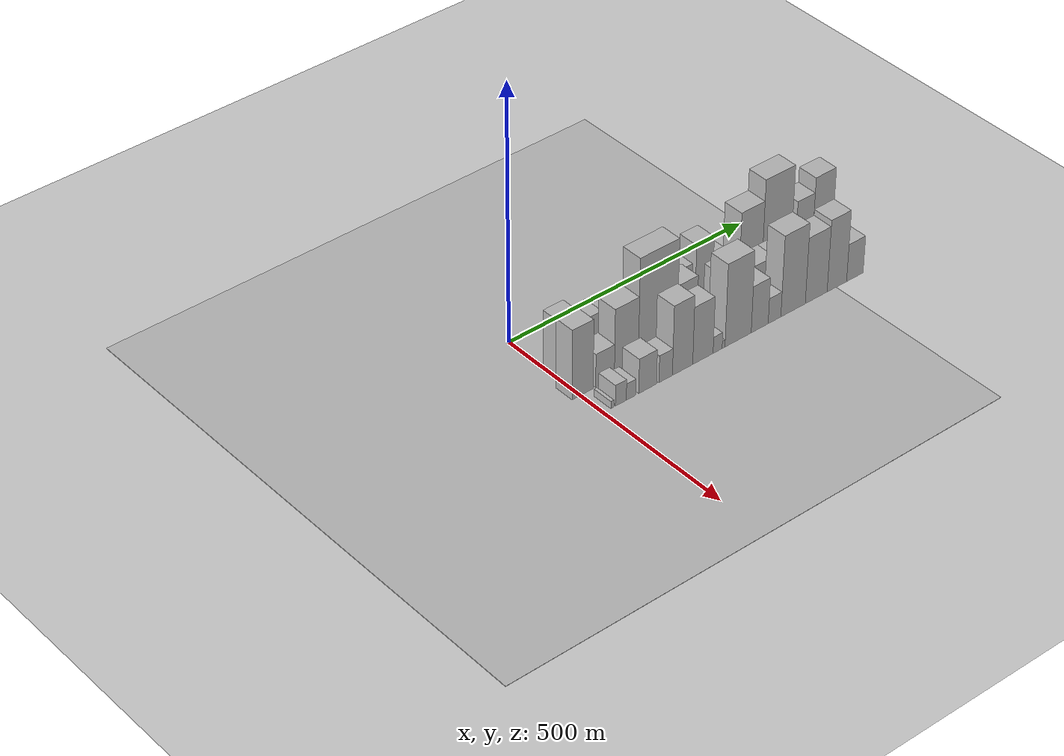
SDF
<sdf version="1.6">
 <world name="default">
  <include><name>ground_plane_1</name><uri>model://HANNAS_ground_plane</uri></include>
  <include>
   <name>ground_plane_2</name>
   <uri>model://HANNAS_ground_plane</uri>
   <pose>100 0 0  0 0 0</pose>
  </include>
  <model name="building_18">
   <static>1</static>
   <pose>100.0000 24.0642 0 0.000000 0.000000 0.000000</pose>
   <link name="link">
    <pose>0 0 55.50 0 0 0</pose>
    <collision name="collision"><geometry><box><size>40.0000 41.2345 111.0000</size></box></geometry></collision>
    <visual name="visual">
     <cast_shadows>0</cast_shadows>
     <geometry><box><size>40.0000 41.2345 111.0000</size></box></geometry>
     <material>
      <script>
       <uri>model://HANNAS_wall/materials/scripts</uri>
       <uri>model://HANNAS_wall/materials/textures</uri>
       <name>vrc/HANNAS_wall</name>
      </script>
     </material>
    </visual>
   </link>
  </model>
  <model name="building_19">
   <static>1</static>
   <pose>100.0000 67.6600 0 0.000000 0.000000 0.000000</pose>
   <link name="link">
    <pose>0 0 45.00 0 0 0</pose>
    <collision name="collision"><geometry><box><size>40.0000 45.9570 90.0000</size></box></geometry></collision>
    <visual name="visual">
     <cast_shadows>0</cast_shadows>
     <geometry><box><size>40.0000 45.9570 90.0000</size></box></geometry>
     <material>
      <script>
       <uri>model://HANNAS_wall/materials/scripts</uri>
       <uri>model://HANNAS_wall/materials/textures</uri>
       <name>vrc/HANNAS_wall</name>
      </script>
     </material>
    </visual>
   </link>
  </model>
  <model name="building_20">
   <static>1</static>
   <pose>100.0000 117.6161 0 0.000000 0.000000 0.000000</pose>
   <link name="link">
    <pose>0 0 37.50 0 0 0</pose>
    <collision name="collision"><geometry><box><size>40.0000 41.9552 75.0000</size></box></geometry></collision>
    <visual name="visual">
     <cast_shadows>0</cast_shadows>
     <geometry><box><size>40.0000 41.9552 75.0000</size></box></geometry>
     <material>
      <script>
       <uri>model://HANNAS_wall/materials/scripts</uri>
       <uri>model://HANNAS_wall/materials/textures</uri>
       <name>vrc/HANNAS_wall</name>
      </script>
     </material>
    </visual>
   </link>
  </model>
  <model name="building_21">
   <static>1</static>
   <pose>100.0000 154.2521 0 0.000000 0.000000 0.000000</pose>
   <link name="link">
    <pose>0 0 28.50 0 0 0</pose>
    <collision name="collision"><geometry><box><size>40.0000 31.3169 57.0000</size></box></geometry></collision>
    <visual name="visual">
     <cast_shadows>0</cast_shadows>
     <geometry><box><size>40.0000 31.3169 57.0000</size></box></geometry>
     <material>
      <script>
       <uri>model://HANNAS_wall/materials/scripts</uri>
       <uri>model://HANNAS_wall/materials/textures</uri>
       <name>vrc/HANNAS_wall</name>
      </script>
     </material>
    </visual>
   </link>
  </model>
  <model name="building_22">
   <static>1</static>
   <pose>100.0000 187.3715 0 0.000000 0.000000 0.000000</pose>
   <link name="link">
    <pose>0 0 21.00 0 0 0</pose>
    <collision name="collision"><geometry><box><size>40.0000 22.9218 42.0000</size></box></geometry></collision>
    <visual name="visual">
     <cast_shadows>0</cast_shadows>
     <geometry><box><size>40.0000 22.9218 42.0000</size></box></geometry>
     <material>
      <script>
       <uri>model://HANNAS_wall/materials/scripts</uri>
       <uri>model://HANNAS_wall/materials/textures</uri>
       <name>vrc/HANNAS_wall</name>
      </script>
     </material>
    </visual>
   </link>
  </model>
  <model name="building_23">
   <static>1</static>
   <pose>100.0000 208.8931 0 0.000000 0.000000 0.000000</pose>
   <link name="link">
    <pose>0 0 19.50 0 0 0</pose>
    <collision name="collision"><geometry><box><size>40.0000 20.1214 39.0000</size></box></geometry></collision>
    <visual name="visual">
     <cast_shadows>0</cast_shadows>
     <geometry><box><size>40.0000 20.1214 39.0000</size></box></geometry>
     <material>
      <script>
       <uri>model://HANNAS_wall/materials/scripts</uri>
       <uri>model://HANNAS_wall/materials/textures</uri>
       <name>vrc/HANNAS_wall</name>
      </script>
     </material>
    </visual>
   </link>
  </model>
  <model name="building_24">
   <static>1</static>
   <pose>100.0000 226.6315 0 0.000000 0.000000 0.000000</pose>
   <link name="link">
    <pose>0 0 7.50 0 0 0</pose>
    <collision name="collision"><geometry><box><size>40.0000 7.3554 15.0000</size></box></geometry></collision>
    <visual name="visual">
     <cast_shadows>0</cast_shadows>
     <geometry><box><size>40.0000 7.3554 15.0000</size></box></geometry>
     <material>
      <script>
       <uri>model://HANNAS_wall/materials/scripts</uri>
       <uri>model://HANNAS_wall/materials/textures</uri>
       <name>vrc/HANNAS_wall</name>
      </script>
     </material>
    </visual>
   </link>
  </model>
  <model name="building_25">
   <static>1</static>
   <pose>100.0000 256.3185 0 0.000000 0.000000 0.000000</pose>
   <link name="link">
    <pose>0 0 45.00 0 0 0</pose>
    <collision name="collision"><geometry><box><size>40.0000 52.0186 90.0000</size></box></geometry></collision>
    <visual name="visual">
     <cast_shadows>0</cast_shadows>
     <geometry><box><size>40.0000 52.0186 90.0000</size></box></geometry>
     <material>
      <script>
       <uri>model://HANNAS_wall/materials/scripts</uri>
       <uri>model://HANNAS_wall/materials/textures</uri>
       <name>vrc/HANNAS_wall</name>
      </script>
     </material>
    </visual>
   </link>
  </model>
  <model name="building_26">
   <static>1</static>
   <pose>100.0000 308.2832 0 0.000000 0.000000 0.000000</pose>
   <link name="link">
    <pose>0 0 61.50 0 0 0</pose>
    <collision name="collision"><geometry><box><size>40.0000 37.9109 123.0000</size></box></geometry></collision>
    <visual name="visual">
     <cast_shadows>0</cast_shadows>
     <geometry><box><size>40.0000 37.9109 123.0000</size></box></geometry>
     <material>
      <script>
       <uri>model://HANNAS_wall/materials/scripts</uri>
       <uri>model://HANNAS_wall/materials/textures</uri>
       <name>vrc/HANNAS_wall</name>
      </script>
     </material>
    </visual>
   </link>
  </model>
  <model name="building_27">
   <static>1</static>
   <pose>100.0000 347.2899 0 0.000000 0.000000 0.000000</pose>
   <link name="link">
    <pose>0 0 36.00 0 0 0</pose>
    <collision name="collision"><geometry><box><size>40.0000 40.1024 72.0000</size></box></geometry></collision>
    <visual name="visual">
     <cast_shadows>0</cast_shadows>
     <geometry><box><size>40.0000 40.1024 72.0000</size></box></geometry>
     <material>
      <script>
       <uri>model://HANNAS_wall/materials/scripts</uri>
       <uri>model://HANNAS_wall/materials/textures</uri>
       <name>vrc/HANNAS_wall</name>
      </script>
     </material>
    </visual>
   </link>
  </model>
  <model name="building_28">
   <static>1</static>
   <pose>100.0000 376.7206 0 0.000000 0.000000 0.000000</pose>
   <link name="link">
    <pose>0 0 18.00 0 0 0</pose>
    <collision name="collision"><geometry><box><size>40.0000 18.7589 36.0000</size></box></geometry></collision>
    <visual name="visual">
     <cast_shadows>0</cast_shadows>
     <geometry><box><size>40.0000 18.7589 36.0000</size></box></geometry>
     <material>
      <script>
       <uri>model://HANNAS_wall/materials/scripts</uri>
       <uri>model://HANNAS_wall/materials/textures</uri>
       <name>vrc/HANNAS_wall</name>
      </script>
     </material>
    </visual>
   </link>
  </model>
  <model name="building_29">
   <static>1</static>
   <pose>100.0000 411.4911 0 0.000000 0.000000 0.000000</pose>
   <link name="link">
    <pose>0 0 70.50 0 0 0</pose>
    <collision name="collision"><geometry><box><size>40.0000 50.7822 141.0000</size></box></geometry></collision>
    <visual name="visual">
     <cast_shadows>0</cast_shadows>
     <geometry><box><size>40.0000 50.7822 141.0000</size></box></geometry>
     <material>
      <script>
       <uri>model://HANNAS_wall/materials/scripts</uri>
       <uri>model://HANNAS_wall/materials/textures</uri>
       <name>vrc/HANNAS_wall</name>
      </script>
     </material>
    </visual>
   </link>
  </model>
  <model name="building_30">
   <static>1</static>
   <pose>100.0000 469.4045 0 0.000000 0.000000 0.000000</pose>
   <link name="link">
    <pose>0 0 91.50 0 0 0</pose>
    <collision name="collision"><geometry><box><size>40.0000 65.0444 183.0000</size></box></geometry></collision>
    <visual name="visual">
     <cast_shadows>0</cast_shadows>
     <geometry><box><size>40.0000 65.0444 183.0000</size></box></geometry>
     <material>
      <script>
       <uri>model://HANNAS_wall/materials/scripts</uri>
       <uri>model://HANNAS_wall/materials/textures</uri>
       <name>vrc/HANNAS_wall</name>
      </script>
     </material>
    </visual>
   </link>
  </model>
  <model name="building_31">
   <static>1</static>
   <pose>100.0000 507.0279 0 0.000000 0.000000 0.000000</pose>
   <link name="link">
    <pose>0 0 12.00 0 0 0</pose>
    <collision name="collision"><geometry><box><size>40.0000 10.2025 24.0000</size></box></geometry></collision>
    <visual name="visual">
     <cast_shadows>0</cast_shadows>
     <geometry><box><size>40.0000 10.2025 24.0000</size></box></geometry>
     <material>
      <script>
       <uri>model://HANNAS_wall/materials/scripts</uri>
       <uri>model://HANNAS_wall/materials/textures</uri>
       <name>vrc/HANNAS_wall</name>
      </script>
     </material>
    </visual>
   </link>
  </model>
  <model name="building_32">
   <static>1</static>
   <pose>100.0000 531.5243 0 0.000000 0.000000 0.000000</pose>
   <link name="link">
    <pose>0 0 52.50 0 0 0</pose>
    <collision name="collision"><geometry><box><size>40.0000 38.7903 105.0000</size></box></geometry></collision>
    <visual name="visual">
     <cast_shadows>0</cast_shadows>
     <geometry><box><size>40.0000 38.7903 105.0000</size></box></geometry>
     <material>
      <script>
       <uri>model://HANNAS_wall/materials/scripts</uri>
       <uri>model://HANNAS_wall/materials/textures</uri>
       <name>vrc/HANNAS_wall</name>
      </script>
     </material>
    </visual>
   </link>
  </model>
  <model name="building_33">
   <static>1</static>
   <pose>100.0000 573.8433 0 0.000000 0.000000 0.000000</pose>
   <link name="link">
    <pose>0 0 67.50 0 0 0</pose>
    <collision name="collision"><geometry><box><size>40.0000 45.8476 135.0000</size></box></geometry></collision>
    <visual name="visual">
     <cast_shadows>0</cast_shadows>
     <geometry><box><size>40.0000 45.8476 135.0000</size></box></geometry>
     <material>
      <script>
       <uri>model://HANNAS_wall/materials/scripts</uri>
       <uri>model://HANNAS_wall/materials/textures</uri>
       <name>vrc/HANNAS_wall</name>
      </script>
     </material>
    </visual>
   </link>
  </model>
  <model name="building_49">
   <static>1</static>
   <pose>155.0000 4.6128 0 0.000000 0.000000 0.000000</pose>
   <link name="link">
    <pose>0 0 69.00 0 0 0</pose>
    <collision name="collision"><geometry><box><size>40.0000 43.2898 138.0000</size></box></geometry></collision>
    <visual name="visual">
     <cast_shadows>0</cast_shadows>
     <geometry><box><size>40.0000 43.2898 138.0000</size></box></geometry>
     <material>
      <script>
       <uri>model://HANNAS_wall/materials/scripts</uri>
       <uri>model://HANNAS_wall/materials/textures</uri>
       <name>vrc/HANNAS_wall</name>
      </script>
     </material>
    </visual>
   </link>
  </model>
  <model name="building_50">
   <static>1</static>
   <pose>155.0000 50.6051 0 0.000000 0.000000 0.000000</pose>
   <link name="link">
    <pose>0 0 33.00 0 0 0</pose>
    <collision name="collision"><geometry><box><size>40.0000 38.6946 66.0000</size></box></geometry></collision>
    <visual name="visual">
     <cast_shadows>0</cast_shadows>
     <geometry><box><size>40.0000 38.6946 66.0000</size></box></geometry>
     <material>
      <script>
       <uri>model://HANNAS_wall/materials/scripts</uri>
       <uri>model://HANNAS_wall/materials/textures</uri>
       <name>vrc/HANNAS_wall</name>
      </script>
     </material>
    </visual>
   </link>
  </model>
  <model name="building_51">
   <static>1</static>
   <pose>155.0000 94.8474 0 0.000000 0.000000 0.000000</pose>
   <link name="link">
    <pose>0 0 67.50 0 0 0</pose>
    <collision name="collision"><geometry><box><size>40.0000 49.7900 135.0000</size></box></geometry></collision>
    <visual name="visual">
     <cast_shadows>0</cast_shadows>
     <geometry><box><size>40.0000 49.7900 135.0000</size></box></geometry>
     <material>
      <script>
       <uri>model://HANNAS_wall/materials/scripts</uri>
       <uri>model://HANNAS_wall/materials/textures</uri>
       <name>vrc/HANNAS_wall</name>
      </script>
     </material>
    </visual>
   </link>
  </model>
  <model name="building_52">
   <static>1</static>
   <pose>155.0000 160.4643 0 0.000000 0.000000 0.000000</pose>
   <link name="link">
    <pose>0 0 105.00 0 0 0</pose>
    <collision name="collision"><geometry><box><size>40.0000 81.4439 210.0000</size></box></geometry></collision>
    <visual name="visual">
     <cast_shadows>0</cast_shadows>
     <geometry><box><size>40.0000 81.4439 210.0000</size></box></geometry>
     <material>
      <script>
       <uri>model://HANNAS_wall/materials/scripts</uri>
       <uri>model://HANNAS_wall/materials/textures</uri>
       <name>vrc/HANNAS_wall</name>
      </script>
     </material>
    </visual>
   </link>
  </model>
  <model name="building_53">
   <static>1</static>
   <pose>155.0000 222.3354 0 0.000000 0.000000 0.000000</pose>
   <link name="link">
    <pose>0 0 58.50 0 0 0</pose>
    <collision name="collision"><geometry><box><size>40.0000 42.2984 117.0000</size></box></geometry></collision>
    <visual name="visual">
     <cast_shadows>0</cast_shadows>
     <geometry><box><size>40.0000 42.2984 117.0000</size></box></geometry>
     <material>
      <script>
       <uri>model://HANNAS_wall/materials/scripts</uri>
       <uri>model://HANNAS_wall/materials/textures</uri>
       <name>vrc/HANNAS_wall</name>
      </script>
     </material>
    </visual>
   </link>
  </model>
  <model name="building_54">
   <static>1</static>
   <pose>155.0000 248.9616 0 0.000000 0.000000 0.000000</pose>
   <link name="link">
    <pose>0 0 13.50 0 0 0</pose>
    <collision name="collision"><geometry><box><size>40.0000 10.9540 27.0000</size></box></geometry></collision>
    <visual name="visual">
     <cast_shadows>0</cast_shadows>
     <geometry><box><size>40.0000 10.9540 27.0000</size></box></geometry>
     <material>
      <script>
       <uri>model://HANNAS_wall/materials/scripts</uri>
       <uri>model://HANNAS_wall/materials/textures</uri>
       <name>vrc/HANNAS_wall</name>
      </script>
     </material>
    </visual>
   </link>
  </model>
  <model name="building_55">
   <static>1</static>
   <pose>155.0000 263.4858 0 0.000000 0.000000 0.000000</pose>
   <link name="link">
    <pose>0 0 16.50 0 0 0</pose>
    <collision name="collision"><geometry><box><size>40.0000 18.0944 33.0000</size></box></geometry></collision>
    <visual name="visual">
     <cast_shadows>0</cast_shadows>
     <geometry><box><size>40.0000 18.0944 33.0000</size></box></geometry>
     <material>
      <script>
       <uri>model://HANNAS_wall/materials/scripts</uri>
       <uri>model://HANNAS_wall/materials/textures</uri>
       <name>vrc/HANNAS_wall</name>
      </script>
     </material>
    </visual>
   </link>
  </model>
  <model name="building_56">
   <static>1</static>
   <pose>155.0000 283.2851 0 0.000000 0.000000 0.000000</pose>
   <link name="link">
    <pose>0 0 18.00 0 0 0</pose>
    <collision name="collision"><geometry><box><size>40.0000 21.5044 36.0000</size></box></geometry></collision>
    <visual name="visual">
     <cast_shadows>0</cast_shadows>
     <geometry><box><size>40.0000 21.5044 36.0000</size></box></geometry>
     <material>
      <script>
       <uri>model://HANNAS_wall/materials/scripts</uri>
       <uri>model://HANNAS_wall/materials/textures</uri>
       <name>vrc/HANNAS_wall</name>
      </script>
     </material>
    </visual>
   </link>
  </model>
  <model name="building_57">
   <static>1</static>
   <pose>155.0000 311.6942 0 0.000000 0.000000 0.000000</pose>
   <link name="link">
    <pose>0 0 46.50 0 0 0</pose>
    <collision name="collision"><geometry><box><size>40.0000 35.3137 93.0000</size></box></geometry></collision>
    <visual name="visual">
     <cast_shadows>0</cast_shadows>
     <geometry><box><size>40.0000 35.3137 93.0000</size></box></geometry>
     <material>
      <script>
       <uri>model://HANNAS_wall/materials/scripts</uri>
       <uri>model://HANNAS_wall/materials/textures</uri>
       <name>vrc/HANNAS_wall</name>
      </script>
     </material>
    </visual>
   </link>
  </model>
  <model name="building_58">
   <static>1</static>
   <pose>155.0000 343.0744 0 0.000000 0.000000 0.000000</pose>
   <link name="link">
    <pose>0 0 10.50 0 0 0</pose>
    <collision name="collision"><geometry><box><size>40.0000 9.4468 21.0000</size></box></geometry></collision>
    <visual name="visual">
     <cast_shadows>0</cast_shadows>
     <geometry><box><size>40.0000 9.4468 21.0000</size></box></geometry>
     <material>
      <script>
       <uri>model://HANNAS_wall/materials/scripts</uri>
       <uri>model://HANNAS_wall/materials/textures</uri>
       <name>vrc/HANNAS_wall</name>
      </script>
     </material>
    </visual>
   </link>
  </model>
  <model name="building_59">
   <static>1</static>
   <pose>155.0000 356.5748 0 0.000000 0.000000 0.000000</pose>
   <link name="link">
    <pose>0 0 15.00 0 0 0</pose>
    <collision name="collision"><geometry><box><size>40.0000 17.5541 30.0000</size></box></geometry></collision>
    <visual name="visual">
     <cast_shadows>0</cast_shadows>
     <geometry><box><size>40.0000 17.5541 30.0000</size></box></geometry>
     <material>
      <script>
       <uri>model://HANNAS_wall/materials/scripts</uri>
       <uri>model://HANNAS_wall/materials/textures</uri>
       <name>vrc/HANNAS_wall</name>
      </script>
     </material>
    </visual>
   </link>
  </model>
  <model name="building_60">
   <static>1</static>
   <pose>155.0000 387.7113 0 0.000000 0.000000 0.000000</pose>
   <link name="link">
    <pose>0 0 37.50 0 0 0</pose>
    <collision name="collision"><geometry><box><size>40.0000 44.7188 75.0000</size></box></geometry></collision>
    <visual name="visual">
     <cast_shadows>0</cast_shadows>
     <geometry><box><size>40.0000 44.7188 75.0000</size></box></geometry>
     <material>
      <script>
       <uri>model://HANNAS_wall/materials/scripts</uri>
       <uri>model://HANNAS_wall/materials/textures</uri>
       <name>vrc/HANNAS_wall</name>
      </script>
     </material>
    </visual>
   </link>
  </model>
  <model name="building_61">
   <static>1</static>
   <pose>155.0000 432.0967 0 0.000000 0.000000 0.000000</pose>
   <link name="link">
    <pose>0 0 37.50 0 0 0</pose>
    <collision name="collision"><geometry><box><size>40.0000 44.0520 75.0000</size></box></geometry></collision>
    <visual name="visual">
     <cast_shadows>0</cast_shadows>
     <geometry><box><size>40.0000 44.0520 75.0000</size></box></geometry>
     <material>
      <script>
       <uri>model://HANNAS_wall/materials/scripts</uri>
       <uri>model://HANNAS_wall/materials/textures</uri>
       <name>vrc/HANNAS_wall</name>
      </script>
     </material>
    </visual>
   </link>
  </model>
  <model name="building_62">
   <static>1</static>
   <pose>155.0000 467.9388 0 0.000000 0.000000 0.000000</pose>
   <link name="link">
    <pose>0 0 18.00 0 0 0</pose>
    <collision name="collision"><geometry><box><size>40.0000 19.6323 36.0000</size></box></geometry></collision>
    <visual name="visual">
     <cast_shadows>0</cast_shadows>
     <geometry><box><size>40.0000 19.6323 36.0000</size></box></geometry>
     <material>
      <script>
       <uri>model://HANNAS_wall/materials/scripts</uri>
       <uri>model://HANNAS_wall/materials/textures</uri>
       <name>vrc/HANNAS_wall</name>
      </script>
     </material>
    </visual>
   </link>
  </model>
  <model name="building_63">
   <static>1</static>
   <pose>155.0000 484.3345 0 0.000000 0.000000 0.000000</pose>
   <link name="link">
    <pose>0 0 13.50 0 0 0</pose>
    <collision name="collision"><geometry><box><size>40.0000 13.1590 27.0000</size></box></geometry></collision>
    <visual name="visual">
     <cast_shadows>0</cast_shadows>
     <geometry><box><size>40.0000 13.1590 27.0000</size></box></geometry>
     <material>
      <script>
       <uri>model://HANNAS_wall/materials/scripts</uri>
       <uri>model://HANNAS_wall/materials/textures</uri>
       <name>vrc/HANNAS_wall</name>
      </script>
     </material>
    </visual>
   </link>
  </model>
  <model name="building_64">
   <static>1</static>
   <pose>155.0000 506.5826 0 0.000000 0.000000 0.000000</pose>
   <link name="link">
    <pose>0 0 18.00 0 0 0</pose>
    <collision name="collision"><geometry><box><size>40.0000 21.3373 36.0000</size></box></geometry></collision>
    <visual name="visual">
     <cast_shadows>0</cast_shadows>
     <geometry><box><size>40.0000 21.3373 36.0000</size></box></geometry>
     <material>
      <script>
       <uri>model://HANNAS_wall/materials/scripts</uri>
       <uri>model://HANNAS_wall/materials/textures</uri>
       <name>vrc/HANNAS_wall</name>
      </script>
     </material>
    </visual>
   </link>
  </model>
  <model name="building_65">
   <static>1</static>
   <pose>155.0000 532.1347 0 0.000000 0.000000 0.000000</pose>
   <link name="link">
    <pose>0 0 28.50 0 0 0</pose>
    <collision name="collision"><geometry><box><size>40.0000 29.7669 57.0000</size></box></geometry></collision>
    <visual name="visual">
     <cast_shadows>0</cast_shadows>
     <geometry><box><size>40.0000 29.7669 57.0000</size></box></geometry>
     <material>
      <script>
       <uri>model://HANNAS_wall/materials/scripts</uri>
       <uri>model://HANNAS_wall/materials/textures</uri>
       <name>vrc/HANNAS_wall</name>
      </script>
     </material>
    </visual>
   </link>
  </model>
  <model name="building_66">
   <static>1</static>
   <pose>155.0000 559.5172 0 0.000000 0.000000 0.000000</pose>
   <link name="link">
    <pose>0 0 24.00 0 0 0</pose>
    <collision name="collision"><geometry><box><size>40.0000 24.9982 48.0000</size></box></geometry></collision>
    <visual name="visual">
     <cast_shadows>0</cast_shadows>
     <geometry><box><size>40.0000 24.9982 48.0000</size></box></geometry>
     <material>
      <script>
       <uri>model://HANNAS_wall/materials/scripts</uri>
       <uri>model://HANNAS_wall/materials/textures</uri>
       <name>vrc/HANNAS_wall</name>
      </script>
     </material>
    </visual>
   </link>
  </model>
  <model name="building_86">
   <static>1</static>
   <pose>210.0000 18.1994 0 0.000000 0.000000 0.000000</pose>
   <link name="link">
    <pose>0 0 7.50 0 0 0</pose>
    <collision name="collision"><geometry><box><size>40.0000 6.1286 15.0000</size></box></geometry></collision>
    <visual name="visual">
     <cast_shadows>0</cast_shadows>
     <geometry><box><size>40.0000 6.1286 15.0000</size></box></geometry>
     <material>
      <script>
       <uri>model://HANNAS_wall/materials/scripts</uri>
       <uri>model://HANNAS_wall/materials/textures</uri>
       <name>vrc/HANNAS_wall</name>
      </script>
     </material>
    </visual>
   </link>
  </model>
  <model name="building_87">
   <static>1</static>
   <pose>210.0000 35.6283 0 0.000000 0.000000 0.000000</pose>
   <link name="link">
    <pose>0 0 21.00 0 0 0</pose>
    <collision name="collision"><geometry><box><size>40.0000 22.7291 42.0000</size></box></geometry></collision>
    <visual name="visual">
     <cast_shadows>0</cast_shadows>
     <geometry><box><size>40.0000 22.7291 42.0000</size></box></geometry>
     <material>
      <script>
       <uri>model://HANNAS_wall/materials/scripts</uri>
       <uri>model://HANNAS_wall/materials/textures</uri>
       <name>vrc/HANNAS_wall</name>
      </script>
     </material>
    </visual>
   </link>
  </model>
  <model name="building_88">
   <static>1</static>
   <pose>210.0000 56.8461 0 0.000000 0.000000 0.000000</pose>
   <link name="link">
    <pose>0 0 16.50 0 0 0</pose>
    <collision name="collision"><geometry><box><size>40.0000 19.7065 33.0000</size></box></geometry></collision>
    <visual name="visual">
     <cast_shadows>0</cast_shadows>
     <geometry><box><size>40.0000 19.7065 33.0000</size></box></geometry>
     <material>
      <script>
       <uri>model://HANNAS_wall/materials/scripts</uri>
       <uri>model://HANNAS_wall/materials/textures</uri>
       <name>vrc/HANNAS_wall</name>
      </script>
     </material>
    </visual>
   </link>
  </model>
  <model name="building_89">
   <static>1</static>
   <pose>210.0000 91.2434 0 0.000000 0.000000 0.000000</pose>
   <link name="link">
    <pose>0 0 34.50 0 0 0</pose>
    <collision name="collision"><geometry><box><size>40.0000 37.0883 69.0000</size></box></geometry></collision>
    <visual name="visual">
     <cast_shadows>0</cast_shadows>
     <geometry><box><size>40.0000 37.0883 69.0000</size></box></geometry>
     <material>
      <script>
       <uri>model://HANNAS_wall/materials/scripts</uri>
       <uri>model://HANNAS_wall/materials/textures</uri>
       <name>vrc/HANNAS_wall</name>
      </script>
     </material>
    </visual>
   </link>
  </model>
  <model name="building_90">
   <static>1</static>
   <pose>210.0000 128.9422 0 0.000000 0.000000 0.000000</pose>
   <link name="link">
    <pose>0 0 27.00 0 0 0</pose>
    <collision name="collision"><geometry><box><size>40.0000 28.3093 54.0000</size></box></geometry></collision>
    <visual name="visual">
     <cast_shadows>0</cast_shadows>
     <geometry><box><size>40.0000 28.3093 54.0000</size></box></geometry>
     <material>
      <script>
       <uri>model://HANNAS_wall/materials/scripts</uri>
       <uri>model://HANNAS_wall/materials/textures</uri>
       <name>vrc/HANNAS_wall</name>
      </script>
     </material>
    </visual>
   </link>
  </model>
  <model name="building_91">
   <static>1</static>
   <pose>210.0000 164.5193 0 0.000000 0.000000 0.000000</pose>
   <link name="link">
    <pose>0 0 69.00 0 0 0</pose>
    <collision name="collision"><geometry><box><size>40.0000 42.8448 138.0000</size></box></geometry></collision>
    <visual name="visual">
     <cast_shadows>0</cast_shadows>
     <geometry><box><size>40.0000 42.8448 138.0000</size></box></geometry>
     <material>
      <script>
       <uri>model://HANNAS_wall/materials/scripts</uri>
       <uri>model://HANNAS_wall/materials/textures</uri>
       <name>vrc/HANNAS_wall</name>
      </script>
     </material>
    </visual>
   </link>
  </model>
  <model name="building_92">
   <static>1</static>
   <pose>210.0000 207.6584 0 0.000000 0.000000 0.000000</pose>
   <link name="link">
    <pose>0 0 57.00 0 0 0</pose>
    <collision name="collision"><geometry><box><size>40.0000 43.4335 114.0000</size></box></geometry></collision>
    <visual name="visual">
     <cast_shadows>0</cast_shadows>
     <geometry><box><size>40.0000 43.4335 114.0000</size></box></geometry>
     <material>
      <script>
       <uri>model://HANNAS_wall/materials/scripts</uri>
       <uri>model://HANNAS_wall/materials/textures</uri>
       <name>vrc/HANNAS_wall</name>
      </script>
     </material>
    </visual>
   </link>
  </model>
  <model name="building_93">
   <static>1</static>
   <pose>210.0000 239.0724 0 0.000000 0.000000 0.000000</pose>
   <link name="link">
    <pose>0 0 16.50 0 0 0</pose>
    <collision name="collision"><geometry><box><size>40.0000 19.3943 33.0000</size></box></geometry></collision>
    <visual name="visual">
     <cast_shadows>0</cast_shadows>
     <geometry><box><size>40.0000 19.3943 33.0000</size></box></geometry>
     <material>
      <script>
       <uri>model://HANNAS_wall/materials/scripts</uri>
       <uri>model://HANNAS_wall/materials/textures</uri>
       <name>vrc/HANNAS_wall</name>
      </script>
     </material>
    </visual>
   </link>
  </model>
  <model name="building_94">
   <static>1</static>
   <pose>210.0000 251.8705 0 0.000000 0.000000 0.000000</pose>
   <link name="link">
    <pose>0 0 7.50 0 0 0</pose>
    <collision name="collision"><geometry><box><size>40.0000 6.2019 15.0000</size></box></geometry></collision>
    <visual name="visual">
     <cast_shadows>0</cast_shadows>
     <geometry><box><size>40.0000 6.2019 15.0000</size></box></geometry>
     <material>
      <script>
       <uri>model://HANNAS_wall/materials/scripts</uri>
       <uri>model://HANNAS_wall/materials/textures</uri>
       <name>vrc/HANNAS_wall</name>
      </script>
     </material>
    </visual>
   </link>
  </model>
  <model name="building_95">
   <static>1</static>
   <pose>210.0000 283.3042 0 0.000000 0.000000 0.000000</pose>
   <link name="link">
    <pose>0 0 82.50 0 0 0</pose>
    <collision name="collision"><geometry><box><size>40.0000 56.6656 165.0000</size></box></geometry></collision>
    <visual name="visual">
     <cast_shadows>0</cast_shadows>
     <geometry><box><size>40.0000 56.6656 165.0000</size></box></geometry>
     <material>
      <script>
       <uri>model://HANNAS_wall/materials/scripts</uri>
       <uri>model://HANNAS_wall/materials/textures</uri>
       <name>vrc/HANNAS_wall</name>
      </script>
     </material>
    </visual>
   </link>
  </model>
  <model name="building_96">
   <static>1</static>
   <pose>210.0000 330.1833 0 0.000000 0.000000 0.000000</pose>
   <link name="link">
    <pose>0 0 46.50 0 0 0</pose>
    <collision name="collision"><geometry><box><size>40.0000 37.0925 93.0000</size></box></geometry></collision>
    <visual name="visual">
     <cast_shadows>0</cast_shadows>
     <geometry><box><size>40.0000 37.0925 93.0000</size></box></geometry>
     <material>
      <script>
       <uri>model://HANNAS_wall/materials/scripts</uri>
       <uri>model://HANNAS_wall/materials/textures</uri>
       <name>vrc/HANNAS_wall</name>
      </script>
     </material>
    </visual>
   </link>
  </model>
  <model name="building_97">
   <static>1</static>
   <pose>210.0000 362.6251 0 0.000000 0.000000 0.000000</pose>
   <link name="link">
    <pose>0 0 25.50 0 0 0</pose>
    <collision name="collision"><geometry><box><size>40.0000 27.7911 51.0000</size></box></geometry></collision>
    <visual name="visual">
     <cast_shadows>0</cast_shadows>
     <geometry><box><size>40.0000 27.7911 51.0000</size></box></geometry>
     <material>
      <script>
       <uri>model://HANNAS_wall/materials/scripts</uri>
       <uri>model://HANNAS_wall/materials/textures</uri>
       <name>vrc/HANNAS_wall</name>
      </script>
     </material>
    </visual>
   </link>
  </model>
  <model name="building_98">
   <static>1</static>
   <pose>210.0000 403.5785 0 0.000000 0.000000 0.000000</pose>
   <link name="link">
    <pose>0 0 81.00 0 0 0</pose>
    <collision name="collision"><geometry><box><size>40.0000 54.1158 162.0000</size></box></geometry></collision>
    <visual name="visual">
     <cast_shadows>0</cast_shadows>
     <geometry><box><size>40.0000 54.1158 162.0000</size></box></geometry>
     <material>
      <script>
       <uri>model://HANNAS_wall/materials/scripts</uri>
       <uri>model://HANNAS_wall/materials/textures</uri>
       <name>vrc/HANNAS_wall</name>
      </script>
     </material>
    </visual>
   </link>
  </model>
  <model name="building_99">
   <static>1</static>
   <pose>210.0000 455.0699 0 0.000000 0.000000 0.000000</pose>
   <link name="link">
    <pose>0 0 66.00 0 0 0</pose>
    <collision name="collision"><geometry><box><size>40.0000 48.8671 132.0000</size></box></geometry></collision>
    <visual name="visual">
     <cast_shadows>0</cast_shadows>
     <geometry><box><size>40.0000 48.8671 132.0000</size></box></geometry>
     <material>
      <script>
       <uri>model://HANNAS_wall/materials/scripts</uri>
       <uri>model://HANNAS_wall/materials/textures</uri>
       <name>vrc/HANNAS_wall</name>
      </script>
     </material>
    </visual>
   </link>
  </model>
  <model name="building_100">
   <static>1</static>
   <pose>210.0000 501.4177 0 0.000000 0.000000 0.000000</pose>
   <link name="link">
    <pose>0 0 72.00 0 0 0</pose>
    <collision name="collision"><geometry><box><size>40.0000 43.8285 144.0000</size></box></geometry></collision>
    <visual name="visual">
     <cast_shadows>0</cast_shadows>
     <geometry><box><size>40.0000 43.8285 144.0000</size></box></geometry>
     <material>
      <script>
       <uri>model://HANNAS_wall/materials/scripts</uri>
       <uri>model://HANNAS_wall/materials/textures</uri>
       <name>vrc/HANNAS_wall</name>
      </script>
     </material>
    </visual>
   </link>
  </model>
  <model name="building_101">
   <static>1</static>
   <pose>210.0000 542.0894 0 0.000000 0.000000 0.000000</pose>
   <link name="link">
    <pose>0 0 37.50 0 0 0</pose>
    <collision name="collision"><geometry><box><size>40.0000 37.5150 75.0000</size></box></geometry></collision>
    <visual name="visual">
     <cast_shadows>0</cast_shadows>
     <geometry><box><size>40.0000 37.5150 75.0000</size></box></geometry>
     <material>
      <script>
       <uri>model://HANNAS_wall/materials/scripts</uri>
       <uri>model://HANNAS_wall/materials/textures</uri>
       <name>vrc/HANNAS_wall</name>
      </script>
     </material>
    </visual>
   </link>
  </model>
 </world>
</sdf>
